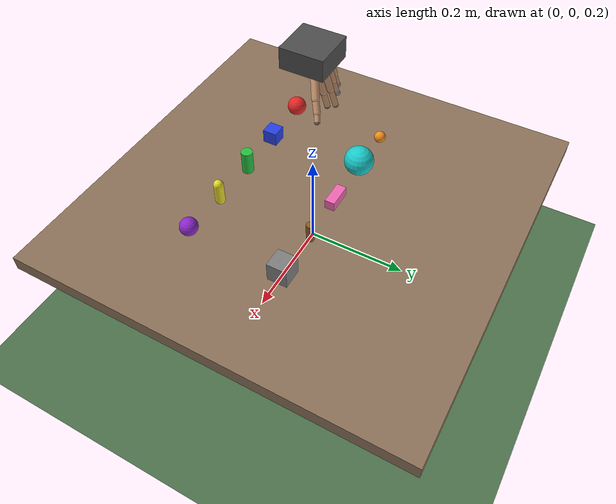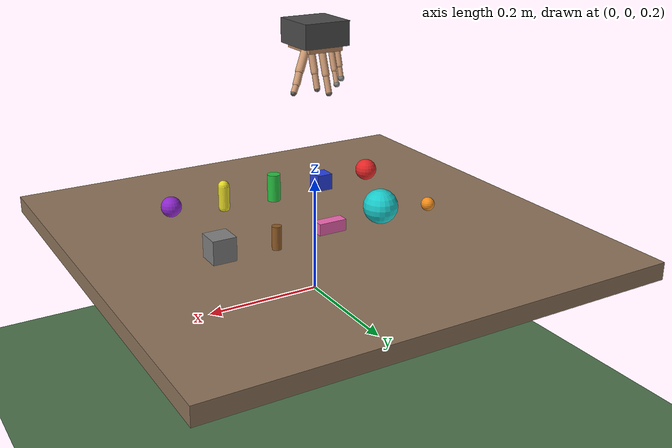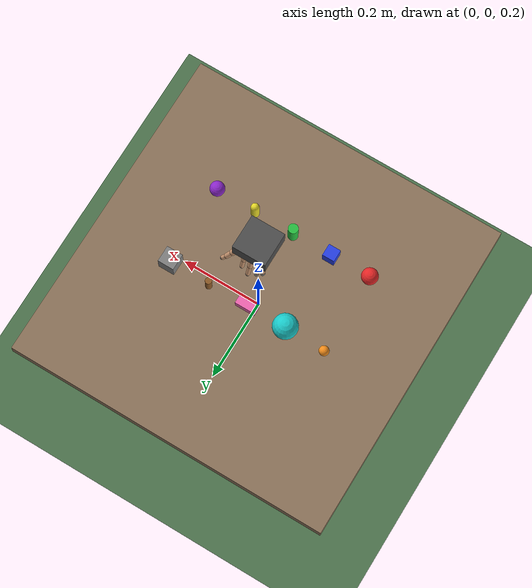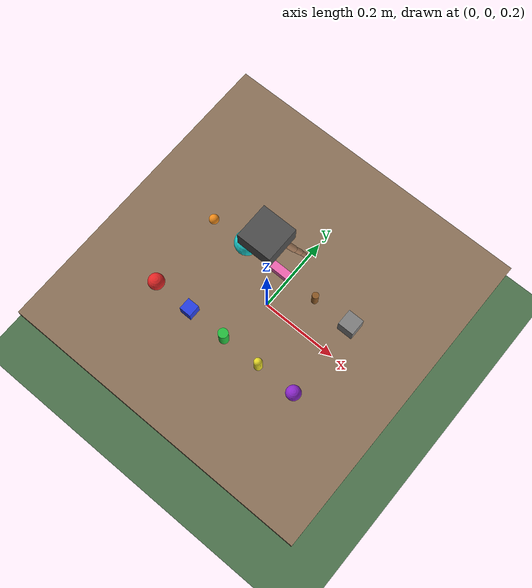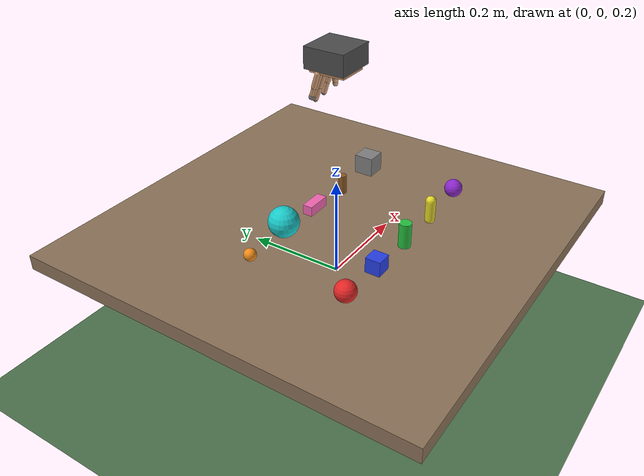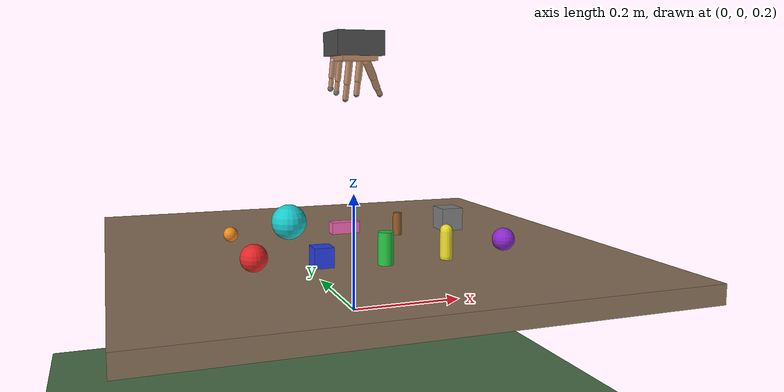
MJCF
<mujoco model="adaptive_dexhand_5finger">
  <compiler angle="radian"/>
  <option timestep="0.001" iterations="50" jacobian="dense">
    <flag constraint="enable" contact="enable"/>
  </option>

  <default>
    <geom condim="4" friction="1.5 0.01 0.001"/>
    <joint armature="0.001" damping="3"/>
  </default>

  <visual>
    <headlight diffuse="0.7 0.7 0.7" ambient="0.3 0.3 0.3"/>
    <global azimuth="200" elevation="-25" offwidth="1280" offheight="720"/>
  </visual>

  <asset>
    <material name="red" rgba="0.9 0.15 0.15 1"/>
    <material name="blue" rgba="0.15 0.25 0.9 1"/>
    <material name="green" rgba="0.15 0.75 0.25 1"/>
    <material name="yellow" rgba="0.9 0.85 0.15 1"/>
    <material name="purple" rgba="0.55 0.15 0.8 1"/>
    <material name="orange" rgba="0.95 0.55 0.1 1"/>
    <material name="cyan" rgba="0.1 0.8 0.8 1"/>
    <material name="pink" rgba="0.95 0.4 0.7 1"/>
    <material name="brown" rgba="0.55 0.35 0.15 1"/>
    <material name="gray" rgba="0.5 0.5 0.5 1"/>
    <material name="hand" rgba="0.8 0.6 0.45 1"/>
    <material name="palm_mat" rgba="0.75 0.55 0.4 1"/>
    <material name="table_mat" rgba="0.55 0.45 0.35 1"/>
    <material name="floor_mat" rgba="0.3 0.45 0.3 1"/>
  </asset>

  <worldbody>
    <!-- 地板 -->
    <geom name="floor" type="plane" size="2 2 0.01" material="floor_mat"/>

    <!-- 桌子 -->
    <body name="table" pos="0 0 0.3">
      <geom name="table_top" type="box" size="0.4 0.4 0.015" material="table_mat" contype="1" conaffinity="1"/>
    </body>

    <!-- ======== 10种物体 ======== -->
    <!-- 1. 红球 -->
    <body name="obj_sphere" pos="-0.2 -0.15 0.34">
      <joint name="obj_sphere_j" type="slide" axis="0 0 1" range="-0.34 1.0" damping="0.5"/>
      <geom name="g_sphere" type="sphere" size="0.02" material="red" mass="0.03"/>
    </body>

    <!-- 2. 蓝立方体 -->
    <body name="obj_cube" pos="-0.1 -0.15 0.335">
      <joint name="obj_cube_j" type="slide" axis="0 0 1" range="-0.335 1.0" damping="0.5"/>
      <geom name="g_cube" type="box" size="0.015 0.015 0.015" material="blue" mass="0.04"/>
    </body>

    <!-- 3. 绿圆柱 -->
    <body name="obj_cylinder" pos="0 -0.15 0.34">
      <joint name="obj_cylinder_j" type="slide" axis="0 0 1" range="-0.34 1.0" damping="0.5"/>
      <geom name="g_cylinder" type="cylinder" size="0.012 0.025" material="green" mass="0.035"/>
    </body>

    <!-- 4. 黄胶囊 -->
    <body name="obj_capsule" pos="0.1 -0.15 0.34">
      <joint name="obj_capsule_j" type="slide" axis="0 0 1" range="-0.34 1.0" damping="0.5"/>
      <geom name="g_capsule" type="capsule" fromto="0 0 -0.02 0 0 0.02" size="0.01" material="yellow" mass="0.03"/>
    </body>

    <!-- 5. 紫椭球(用sphere缩放模拟) -->
    <body name="obj_ellipsoid" pos="0.2 -0.15 0.34">
      <joint name="obj_ellipsoid_j" type="slide" axis="0 0 1" range="-0.34 1.0" damping="0.5"/>
      <geom name="g_ellipsoid" type="sphere" size="0.018" material="purple" mass="0.025"/>
    </body>

    <!-- 6. 橙小球 -->
    <body name="obj_small" pos="-0.2 0.05 0.335">
      <joint name="obj_small_j" type="slide" axis="0 0 1" range="-0.335 1.0" damping="0.5"/>
      <geom name="g_small" type="sphere" size="0.012" material="orange" mass="0.015"/>
    </body>

    <!-- 7. 青大球 -->
    <body name="obj_big" pos="-0.1 0.05 0.35">
      <joint name="obj_big_j" type="slide" axis="0 0 1" range="-0.35 1.0" damping="0.5"/>
      <geom name="g_big" type="sphere" size="0.03" material="cyan" mass="0.06"/>
    </body>

    <!-- 8. 粉色长方体 -->
    <body name="obj_rect" pos="0 0.05 0.335">
      <joint name="obj_rect_j" type="slide" axis="0 0 1" range="-0.335 1.0" damping="0.5"/>
      <geom name="g_rect" type="box" size="0.025 0.01 0.01" material="pink" mass="0.035"/>
    </body>

    <!-- 9. 棕色小圆柱 -->
    <body name="obj_small_cyl" pos="0.1 0.05 0.335">
      <joint name="obj_small_cyl_j" type="slide" axis="0 0 1" range="-0.335 1.0" damping="0.5"/>
      <geom name="g_small_cyl" type="cylinder" size="0.008 0.02" material="brown" mass="0.025"/>
    </body>

    <!-- 10. 灰色大立方体 -->
    <body name="obj_big_cube" pos="0.2 0.05 0.34">
      <joint name="obj_big_cube_j" type="slide" axis="0 0 1" range="-0.34 1.0" damping="0.5"/>
      <geom name="g_big_cube" type="box" size="0.02 0.02 0.02" material="gray" mass="0.05"/>
    </body>

    <!-- ======== 5指灵巧手 ======== -->
    <body name="base" pos="0 0 0.65">
      <geom type="box" size="0.04 0.04 0.02" rgba="0.3 0.3 0.3 1" contype="0" conaffinity="0"/>

      <!-- 垂直滑轨 -->
      <body name="arm">
        <joint name="z" type="slide" axis="0 0 -1" range="0 0.35"/>
        <geom type="box" size="0.025 0.025 0.012" rgba="0.4 0.4 0.4 1" contype="0" conaffinity="0"/>

        <!-- 手掌 -->
        <body name="palm" pos="0 0 -0.02">
          <geom name="palm_g" type="box" size="0.03 0.035 0.008" material="palm_mat" contype="1" conaffinity="1"/>

          <!-- 拇指 (正面偏右) -->
          <body name="f_thumb" pos="0.03 0.02 -0.008">
            <joint name="j_thumb1" type="hinge" axis="0 1 0" range="0 1.5"/>
            <geom type="capsule" fromto="0 0 0 0.015 0.01 -0.025" size="0.007" material="hand"/>
            <body name="f_thumb_t" pos="0.015 0.01 -0.025">
              <joint name="j_thumb2" type="hinge" axis="0 1 0" range="0 1.2"/>
              <geom type="capsule" fromto="0 0 0 0.01 0.008 -0.018" size="0.006" material="hand"/>
              <body name="f_thumb_tip" pos="0.01 0.008 -0.018">
                <joint name="j_thumb3" type="hinge" axis="0 1 0" range="0 1.0"/>
                <geom type="capsule" fromto="0 0 0 0.008 0.005 -0.012" size="0.005" material="hand"/>
                <site name="s_thumb" pos="0.008 0.005 -0.012"/>
              </body>
            </body>
          </body>

          <!-- 食指 -->
          <body name="f1" pos="0.018 0.02 -0.008">
            <joint name="j1" type="hinge" axis="-1 0 0" range="0 2"/>
            <geom type="capsule" fromto="0 0 0 0 0.01 -0.03" size="0.006" material="hand"/>
            <body name="f1t" pos="0 0.01 -0.03">
              <joint name="j1t" type="hinge" axis="-1 0 0" range="0 1.8"/>
              <geom type="capsule" fromto="0 0 0 0 0.008 -0.025" size="0.005" material="hand"/>
              <site name="s1" pos="0 0.008 -0.025"/>
            </body>
          </body>

          <!-- 中指 -->
          <body name="f2" pos="0 0.022 -0.008">
            <joint name="j2" type="hinge" axis="-1 0 0" range="0 2"/>
            <geom type="capsule" fromto="0 0 0 0 0.012 -0.035" size="0.006" material="hand"/>
            <body name="f2t" pos="0 0.012 -0.035">
              <joint name="j2t" type="hinge" axis="-1 0 0" range="0 1.8"/>
              <geom type="capsule" fromto="0 0 0 0 0.01 -0.028" size="0.005" material="hand"/>
              <site name="s2" pos="0 0.01 -0.028"/>
            </body>
          </body>

          <!-- 无名指 -->
          <body name="f3" pos="-0.018 0.02 -0.008">
            <joint name="j3" type="hinge" axis="-1 0 0" range="0 2"/>
            <geom type="capsule" fromto="0 0 0 0 0.01 -0.03" size="0.005" material="hand"/>
            <body name="f3t" pos="0 0.01 -0.03">
              <joint name="j3t" type="hinge" axis="-1 0 0" range="0 1.8"/>
              <geom type="capsule" fromto="0 0 0 0 0.008 -0.022" size="0.004" material="hand"/>
              <site name="s3" pos="0 0.008 -0.022"/>
            </body>
          </body>

          <!-- 小指 -->
          <body name="f4" pos="-0.03 0.018 -0.008">
            <joint name="j4" type="hinge" axis="-1 0 0" range="0 2"/>
            <geom type="capsule" fromto="0 0 0 0 0.008 -0.025" size="0.005" material="hand"/>
            <body name="f4t" pos="0 0.008 -0.025">
              <joint name="j4t" type="hinge" axis="-1 0 0" range="0 1.8"/>
              <geom type="capsule" fromto="0 0 0 0 0.006 -0.02" size="0.004" material="hand"/>
              <site name="s4" pos="0 0.006 -0.02"/>
            </body>
          </body>
        </body>
      </body>
    </body>
  </worldbody>

  <!-- 5个触觉传感器 -->
  <sensor>
    <touch name="t_thumb" site="s_thumb"/>
    <touch name="t1" site="s1"/>
    <touch name="t2" site="s2"/>
    <touch name="t3" site="s3"/>
    <touch name="t4" site="s4"/>
  </sensor>

  <!-- 15个执行器 (拇指3关节x1 + 4指x(1基+1尖)) -->
  <actuator>
    <position name="az" joint="z" kp="800" kv="80"/>
    <position name="a_thumb1" joint="j_thumb1" kp="150" kv="15"/>
    <position name="a_thumb2" joint="j_thumb2" kp="120" kv="12"/>
    <position name="a_thumb3" joint="j_thumb3" kp="100" kv="10"/>
    <position name="a1" joint="j1" kp="150" kv="15"/>
    <position name="a1t" joint="j1t" kp="120" kv="12"/>
    <position name="a2" joint="j2" kp="150" kv="15"/>
    <position name="a2t" joint="j2t" kp="120" kv="12"/>
    <position name="a3" joint="j3" kp="150" kv="15"/>
    <position name="a3t" joint="j3t" kp="120" kv="12"/>
    <position name="a4" joint="j4" kp="150" kv="15"/>
    <position name="a4t" joint="j4t" kp="120" kv="12"/>
  </actuator>
</mujoco>
